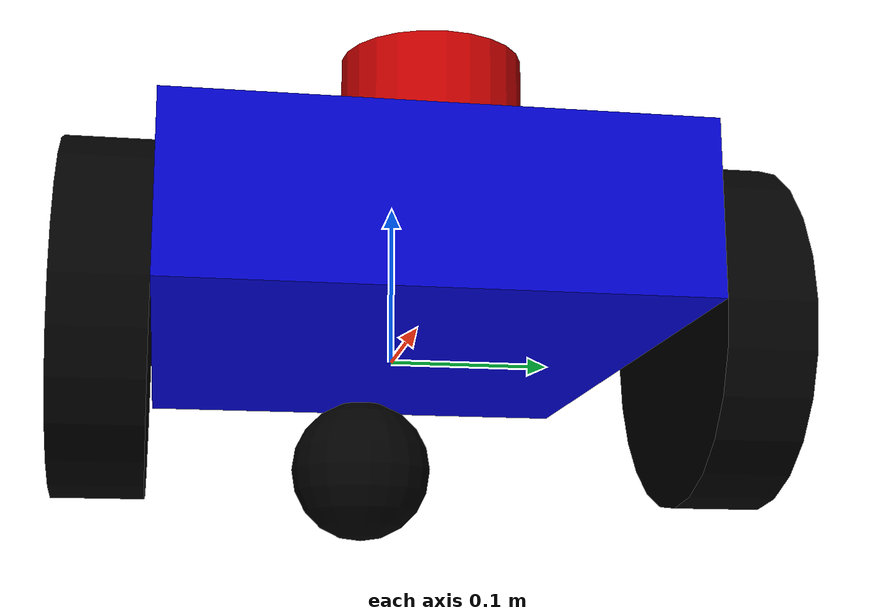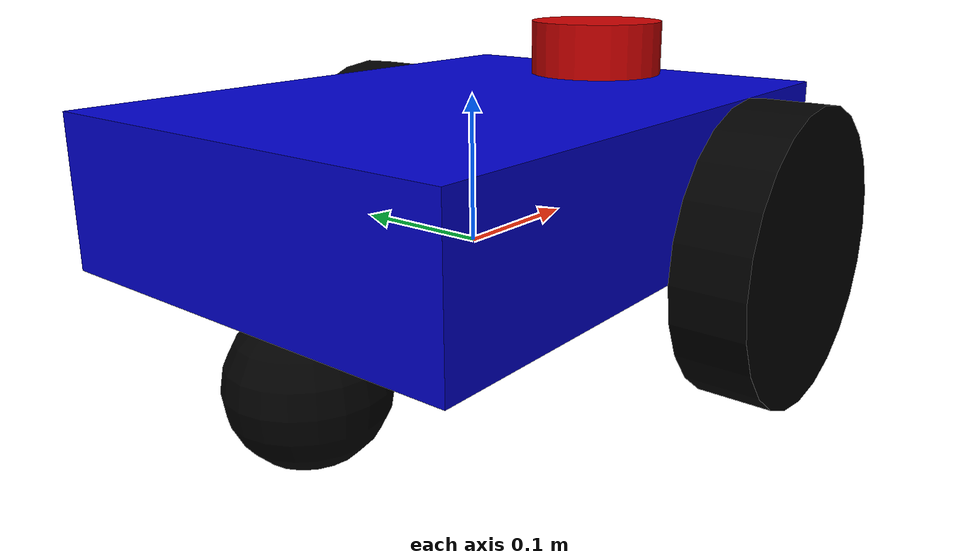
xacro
<?xml version="1.0"?>
<robot xmlns:xacro="http://www.ros.org/wiki/xacro" name="mobile_bot">

    <xacro:property name="wheel_radius" value="0.1" />
    <xacro:property name="wheel_width" value="0.05" />

    <material name="blue"><color rgba="0 0 0.8 1"/></material>
    <material name="black"><color rgba="0 0 0 1"/></material>
    <material name="red"><color rgba="0.8 0 0 1"/></material>

    <link name="base_footprint"/>

    <joint name="base_footprint_joint" type="fixed">
        <parent link="base_footprint"/>
        <child link="base_link"/>
        <origin xyz="0 0 0.05" rpy="0 0 0"/>
    </joint>

    <link name="base_link">
        <visual>
            <geometry><box size="0.4 0.3 0.1"/></geometry>
            <material name="blue"/>
        </visual>
        <collision>
            <geometry><box size="0.4 0.3 0.1"/></geometry>
        </collision>
        <inertial>
            <mass value="5.0"/>
            <inertia ixx="0.04" ixy="0" ixz="0" iyy="0.07" iyz="0" izz="0.1"/>
        </inertial>
    </link>

    <xacro:macro name="wheel" params="name y_offset">
        <link name="${name}_wheel">
            <visual>
                <geometry><cylinder radius="${wheel_radius}" length="${wheel_width}"/></geometry>
                <material name="black"/>
            </visual>
            <collision>
                <geometry><cylinder radius="${wheel_radius}" length="${wheel_width}"/></geometry>
            </collision>
            <inertial>
                <mass value="1.0"/>
                <inertia ixx="0.03" ixy="0" ixz="0" iyy="0.03" iyz="0" izz="0.005"/>
            </inertial>
        </link>

        <joint name="${name}_wheel_joint" type="continuous">
            <parent link="base_link"/>
            <child link="${name}_wheel"/>
            <origin xyz="0.1 ${y_offset} -0.05" rpy="1.5708 0 0"/>
            <axis xyz="0 0 1"/>
        </joint>
    </xacro:macro>

    <xacro:wheel name="left" y_offset="0.175"/>
    <xacro:wheel name="right" y_offset="-0.175"/>

    <link name="caster_wheel">
        <visual>
            <geometry><sphere radius="0.05"/></geometry>
            <material name="black"/>
        </visual>
        <collision>
            <geometry><sphere radius="0.05"/></geometry>
        </collision>
        <inertial>
            <mass value="0.5"/>
            <inertia ixx="0.01" ixy="0" ixz="0" iyy="0.01" iyz="0" izz="0.001"/>
        </inertial>
    </link>

    <joint name="caster_joint" type="fixed">
        <parent link="base_link"/>
        <child link="caster_wheel"/>
        <origin xyz="-0.15 0 -0.1" rpy="0 0 0"/>
    </joint>

    <gazebo reference="caster_wheel">
        <mu1>0.0</mu1>
        <mu2>0.0</mu2>
        <kp>1000000.0</kp>
        <kd>100.0</kd>
        <minDepth>0.001</minDepth>
        <maxVel>1.0</maxVel>
        <material>Gazebo/FlatBlack</material>
    </gazebo>

    <link name="laser_link">
        <visual>
            <geometry><cylinder radius="0.05" length="0.04"/></geometry>
            <material name="red"/>
        </visual>
    </link>
    <joint name="laser_joint" type="fixed">
        <parent link="base_link"/>
        <child link="laser_link"/>
        <origin xyz="0.15 0 0.07" rpy="0 0 0"/>
    </joint>

    <gazebo>
        <plugin name="differential_drive_controller" filename="libgazebo_ros_diff_drive.so">
            <updateRate>50</updateRate>
            <leftJoint>left_wheel_joint</leftJoint>
            <rightJoint>right_wheel_joint</rightJoint>
            <wheelSeparation>0.35</wheelSeparation>
            <wheelDiameter>0.2</wheelDiameter>
            <wheelAcceleration>1.0</wheelAcceleration>
            <wheelTorque>20</wheelTorque>
            <commandTopic>cmd_vel</commandTopic>
            <odometryTopic>odom</odometryTopic>
            <odometryFrame>odom</odometryFrame>
            <robotBaseFrame>base_footprint</robotBaseFrame>
            <publishWheelTF>false</publishWheelTF>
            <publishOdomTF>true</publishOdomTF>
            <publishTf>1</publishTf>
            <publishWheelJointState>true</publishWheelJointState>
        </plugin>
    </gazebo>

    <gazebo reference="laser_link">
        <sensor type="ray" name="head_rplidar_sensor">
            <pose>0 0 0 0 0 0</pose>
            <visualize>true</visualize> <update_rate>40</update_rate>
            <ray>
                <scan>
                    <horizontal>
                        <samples>720</samples>
                        <resolution>1</resolution>
                        <min_angle>-3.14159</min_angle>
                        <max_angle>3.14159</max_angle>
                    </horizontal>
                </scan>
                <range>
                    <min>0.2</min>
                    <max>12.0</max>
                    <resolution>0.01</resolution>
                </range>
            </ray>
            <plugin name="gazebo_ros_head_rplidar_controller" filename="libgazebo_ros_laser.so">
                <topicName>/scan</topicName>
                <frameName>laser_link</frameName>
            </plugin>
        </sensor>
    </gazebo>

</robot>
